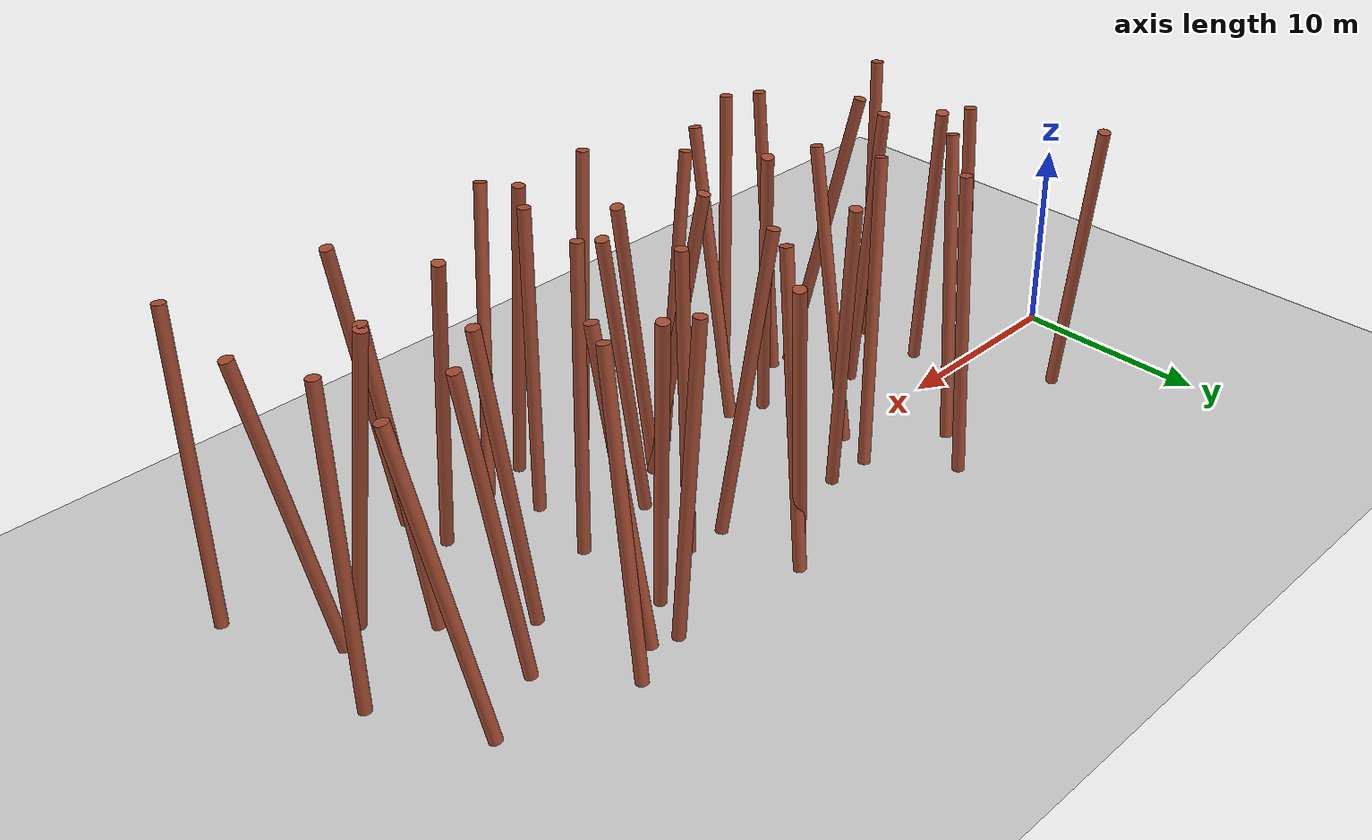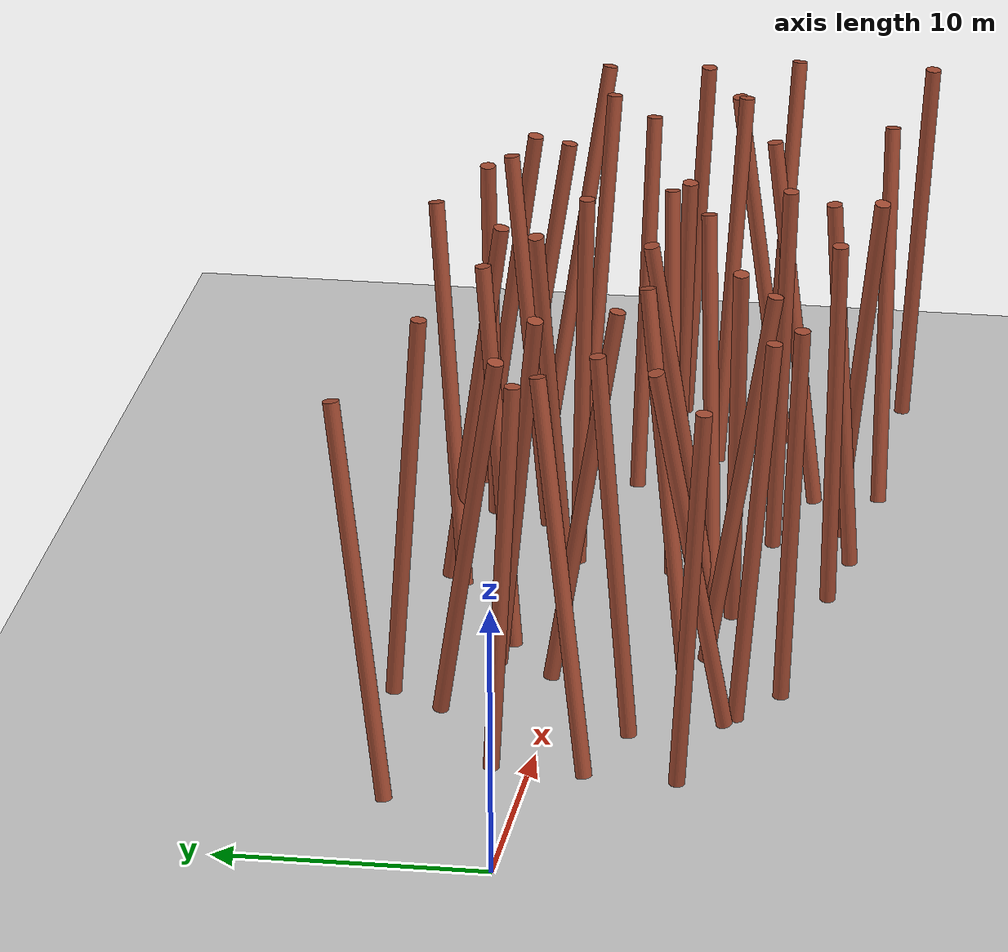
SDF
<sdf version="1.5">
 <world name="default">
  <include><uri>model://sun</uri></include>
  <include><uri>model://ground_plane</uri></include>
  <include><uri>model://asphalt_plane</uri><pose>0 0 -0.000001 0 0 0</pose></include>
  <model name="unit_cylinder_8">
   <pose>7.14832 -6.00009 7.70000 0.07278 -0.09393 0.00000</pose>
   <gravity>0 0 0</gravity>
   <link name="link">
    <inertial>
     <mass>100</mass>
     <inertia><ixx>20</ixx><ixy>0</ixy><ixz>0</ixz><iyy>20</iyy><iyz>0</iyz><izz>20</izz></inertia>
    </inertial>
    <collision name="collision">
     <geometry><cylinder><radius>0.300</radius><length>15.000</length></cylinder></geometry>
    </collision>
    <visual name="visual">
     <geometry><cylinder><radius>0.300</radius><length>15.000</length></cylinder></geometry>
     <material>
      <script><name>Gazebo/Bricks</name><uri>file://media/materials/scripts/gazebo.material</uri></script>
     </material>
    </visual>
   </link>
   <static>1</static>
  </model>
  <model name="unit_cylinder_9">
   <pose>8.47925 -1.17007 7.70000 -0.12433 0.08688 0.00000</pose>
   <gravity>0 0 0</gravity>
   <link name="link">
    <inertial>
     <mass>100</mass>
     <inertia><ixx>20</ixx><ixy>0</ixy><ixz>0</ixz><iyy>20</iyy><iyz>0</iyz><izz>20</izz></inertia>
    </inertial>
    <collision name="collision">
     <geometry><cylinder><radius>0.300</radius><length>15.000</length></cylinder></geometry>
    </collision>
    <visual name="visual">
     <geometry><cylinder><radius>0.300</radius><length>15.000</length></cylinder></geometry>
     <material>
      <script><name>Gazebo/Bricks</name><uri>file://media/materials/scripts/gazebo.material</uri></script>
     </material>
    </visual>
   </link>
   <static>1</static>
  </model>
  <model name="unit_cylinder_10">
   <pose>8.07390 0.90257 7.70000 0.05890 -0.02465 0.00000</pose>
   <gravity>0 0 0</gravity>
   <link name="link">
    <inertial>
     <mass>100</mass>
     <inertia><ixx>20</ixx><ixy>0</ixy><ixz>0</ixz><iyy>20</iyy><iyz>0</iyz><izz>20</izz></inertia>
    </inertial>
    <collision name="collision">
     <geometry><cylinder><radius>0.300</radius><length>15.000</length></cylinder></geometry>
    </collision>
    <visual name="visual">
     <geometry><cylinder><radius>0.300</radius><length>15.000</length></cylinder></geometry>
     <material>
      <script><name>Gazebo/Bricks</name><uri>file://media/materials/scripts/gazebo.material</uri></script>
     </material>
    </visual>
   </link>
   <static>1</static>
  </model>
  <model name="unit_cylinder_11">
   <pose>5.30931 5.61943 7.70000 -0.12679 0.05714 0.00000</pose>
   <gravity>0 0 0</gravity>
   <link name="link">
    <inertial>
     <mass>100</mass>
     <inertia><ixx>20</ixx><ixy>0</ixy><ixz>0</ixz><iyy>20</iyy><iyz>0</iyz><izz>20</izz></inertia>
    </inertial>
    <collision name="collision">
     <geometry><cylinder><radius>0.300</radius><length>15.000</length></cylinder></geometry>
    </collision>
    <visual name="visual">
     <geometry><cylinder><radius>0.300</radius><length>15.000</length></cylinder></geometry>
     <material>
      <script><name>Gazebo/Bricks</name><uri>file://media/materials/scripts/gazebo.material</uri></script>
     </material>
    </visual>
   </link>
   <static>1</static>
  </model>
  <model name="unit_cylinder_28">
   <pose>11.63084 -5.40931 7.70000 -0.14817 -0.17126 0.00000</pose>
   <gravity>0 0 0</gravity>
   <link name="link">
    <inertial>
     <mass>100</mass>
     <inertia><ixx>20</ixx><ixy>0</ixy><ixz>0</ixz><iyy>20</iyy><iyz>0</iyz><izz>20</izz></inertia>
    </inertial>
    <collision name="collision">
     <geometry><cylinder><radius>0.300</radius><length>15.000</length></cylinder></geometry>
    </collision>
    <visual name="visual">
     <geometry><cylinder><radius>0.300</radius><length>15.000</length></cylinder></geometry>
     <material>
      <script><name>Gazebo/Bricks</name><uri>file://media/materials/scripts/gazebo.material</uri></script>
     </material>
    </visual>
    <kinematic>1</kinematic>
   </link>
   <static>0</static>
   <plugin name="dynamic_obstacle_motion_28" filename="libobstaclePathPlugin.so">
    <motion_type>proximity_linear</motion_type>
    <direction>0.120241730 -0.992744643 0.000000000</direction>
    <velocity>0.336076982</velocity>
    <activation_distance>20.000000000</activation_distance>
    <activation_model>iris</activation_model>
    <orientation>false</orientation>
    <marker_enabled>true</marker_enabled>
    <marker_id>28</marker_id>
    <marker_radius>0.300000000</marker_radius>
    <marker_height>15.000000000</marker_height>
    <marker_rate>20.0</marker_rate>
    <marker_topic>/uav_simulator/dynamic_obstacles</marker_topic>
    <marker_frame>map</marker_frame>
   </plugin>
  </model>
  <model name="unit_cylinder_29">
   <pose>11.51156 -2.61874 7.70000 -0.07234 -0.03465 0.00000</pose>
   <gravity>0 0 0</gravity>
   <link name="link">
    <inertial>
     <mass>100</mass>
     <inertia><ixx>20</ixx><ixy>0</ixy><ixz>0</ixz><iyy>20</iyy><iyz>0</iyz><izz>20</izz></inertia>
    </inertial>
    <collision name="collision">
     <geometry><cylinder><radius>0.300</radius><length>15.000</length></cylinder></geometry>
    </collision>
    <visual name="visual">
     <geometry><cylinder><radius>0.300</radius><length>15.000</length></cylinder></geometry>
     <material>
      <script><name>Gazebo/Bricks</name><uri>file://media/materials/scripts/gazebo.material</uri></script>
     </material>
    </visual>
    <kinematic>1</kinematic>
   </link>
   <static>0</static>
   <plugin name="dynamic_obstacle_motion_29" filename="libobstaclePathPlugin.so">
    <motion_type>proximity_linear</motion_type>
    <direction>0.851806445 0.523856641 0.000000000</direction>
    <velocity>1.157463116</velocity>
    <activation_distance>20.000000000</activation_distance>
    <activation_model>iris</activation_model>
    <orientation>false</orientation>
    <marker_enabled>true</marker_enabled>
    <marker_id>29</marker_id>
    <marker_radius>0.300000000</marker_radius>
    <marker_height>15.000000000</marker_height>
    <marker_rate>20.0</marker_rate>
    <marker_topic>/uav_simulator/dynamic_obstacles</marker_topic>
    <marker_frame>map</marker_frame>
   </plugin>
  </model>
  <model name="unit_cylinder_30">
   <pose>11.64072 2.71699 7.70000 0.16422 -0.14961 0.00000</pose>
   <gravity>0 0 0</gravity>
   <link name="link">
    <inertial>
     <mass>100</mass>
     <inertia><ixx>20</ixx><ixy>0</ixy><ixz>0</ixz><iyy>20</iyy><iyz>0</iyz><izz>20</izz></inertia>
    </inertial>
    <collision name="collision">
     <geometry><cylinder><radius>0.300</radius><length>15.000</length></cylinder></geometry>
    </collision>
    <visual name="visual">
     <geometry><cylinder><radius>0.300</radius><length>15.000</length></cylinder></geometry>
     <material>
      <script><name>Gazebo/Bricks</name><uri>file://media/materials/scripts/gazebo.material</uri></script>
     </material>
    </visual>
    <kinematic>1</kinematic>
   </link>
   <static>0</static>
   <plugin name="dynamic_obstacle_motion_30" filename="libobstaclePathPlugin.so">
    <motion_type>proximity_linear</motion_type>
    <direction>-0.948923586 0.315505988 0.000000000</direction>
    <velocity>0.562098630</velocity>
    <activation_distance>20.000000000</activation_distance>
    <activation_model>iris</activation_model>
    <orientation>false</orientation>
    <marker_enabled>true</marker_enabled>
    <marker_id>30</marker_id>
    <marker_radius>0.300000000</marker_radius>
    <marker_height>15.000000000</marker_height>
    <marker_rate>20.0</marker_rate>
    <marker_topic>/uav_simulator/dynamic_obstacles</marker_topic>
    <marker_frame>map</marker_frame>
   </plugin>
  </model>
  <model name="unit_cylinder_47">
   <pose>15.41884 -8.59345 7.70000 0.05243 -0.07882 0.00000</pose>
   <gravity>0 0 0</gravity>
   <link name="link">
    <inertial>
     <mass>100</mass>
     <inertia><ixx>20</ixx><ixy>0</ixy><ixz>0</ixz><iyy>20</iyy><iyz>0</iyz><izz>20</izz></inertia>
    </inertial>
    <collision name="collision">
     <geometry><cylinder><radius>0.300</radius><length>15.000</length></cylinder></geometry>
    </collision>
    <visual name="visual">
     <geometry><cylinder><radius>0.300</radius><length>15.000</length></cylinder></geometry>
     <material>
      <script><name>Gazebo/Bricks</name><uri>file://media/materials/scripts/gazebo.material</uri></script>
     </material>
    </visual>
   </link>
   <static>1</static>
  </model>
  <model name="unit_cylinder_48">
   <pose>13.58565 -7.47808 7.70000 0.08934 -0.02254 0.00000</pose>
   <gravity>0 0 0</gravity>
   <link name="link">
    <inertial>
     <mass>100</mass>
     <inertia><ixx>20</ixx><ixy>0</ixy><ixz>0</ixz><iyy>20</iyy><iyz>0</iyz><izz>20</izz></inertia>
    </inertial>
    <collision name="collision">
     <geometry><cylinder><radius>0.300</radius><length>15.000</length></cylinder></geometry>
    </collision>
    <visual name="visual">
     <geometry><cylinder><radius>0.300</radius><length>15.000</length></cylinder></geometry>
     <material>
      <script><name>Gazebo/Bricks</name><uri>file://media/materials/scripts/gazebo.material</uri></script>
     </material>
    </visual>
   </link>
   <static>1</static>
  </model>
  <model name="unit_cylinder_49">
   <pose>16.13099 -0.86104 7.70000 0.16852 -0.02488 0.00000</pose>
   <gravity>0 0 0</gravity>
   <link name="link">
    <inertial>
     <mass>100</mass>
     <inertia><ixx>20</ixx><ixy>0</ixy><ixz>0</ixz><iyy>20</iyy><iyz>0</iyz><izz>20</izz></inertia>
    </inertial>
    <collision name="collision">
     <geometry><cylinder><radius>0.300</radius><length>15.000</length></cylinder></geometry>
    </collision>
    <visual name="visual">
     <geometry><cylinder><radius>0.300</radius><length>15.000</length></cylinder></geometry>
     <material>
      <script><name>Gazebo/Bricks</name><uri>file://media/materials/scripts/gazebo.material</uri></script>
     </material>
    </visual>
    <kinematic>1</kinematic>
   </link>
   <static>0</static>
   <plugin name="dynamic_obstacle_motion_49" filename="libobstaclePathPlugin.so">
    <motion_type>proximity_linear</motion_type>
    <direction>0.685323812 0.728238472 0.000000000</direction>
    <velocity>0.678019189</velocity>
    <activation_distance>20.000000000</activation_distance>
    <activation_model>iris</activation_model>
    <orientation>false</orientation>
    <marker_enabled>true</marker_enabled>
    <marker_id>49</marker_id>
    <marker_radius>0.300000000</marker_radius>
    <marker_height>15.000000000</marker_height>
    <marker_rate>20.0</marker_rate>
    <marker_topic>/uav_simulator/dynamic_obstacles</marker_topic>
    <marker_frame>map</marker_frame>
   </plugin>
  </model>
  <model name="unit_cylinder_50">
   <pose>15.97613 1.59817 7.70000 0.11770 -0.16946 0.00000</pose>
   <gravity>0 0 0</gravity>
   <link name="link">
    <inertial>
     <mass>100</mass>
     <inertia><ixx>20</ixx><ixy>0</ixy><ixz>0</ixz><iyy>20</iyy><iyz>0</iyz><izz>20</izz></inertia>
    </inertial>
    <collision name="collision">
     <geometry><cylinder><radius>0.300</radius><length>15.000</length></cylinder></geometry>
    </collision>
    <visual name="visual">
     <geometry><cylinder><radius>0.300</radius><length>15.000</length></cylinder></geometry>
     <material>
      <script><name>Gazebo/Bricks</name><uri>file://media/materials/scripts/gazebo.material</uri></script>
     </material>
    </visual>
    <kinematic>1</kinematic>
   </link>
   <static>0</static>
   <plugin name="dynamic_obstacle_motion_50" filename="libobstaclePathPlugin.so">
    <motion_type>proximity_linear</motion_type>
    <direction>0.761717506 -0.647909284 0.000000000</direction>
    <velocity>0.835055037</velocity>
    <activation_distance>20.000000000</activation_distance>
    <activation_model>iris</activation_model>
    <orientation>false</orientation>
    <marker_enabled>true</marker_enabled>
    <marker_id>50</marker_id>
    <marker_radius>0.300000000</marker_radius>
    <marker_height>15.000000000</marker_height>
    <marker_rate>20.0</marker_rate>
    <marker_topic>/uav_simulator/dynamic_obstacles</marker_topic>
    <marker_frame>map</marker_frame>
   </plugin>
  </model>
  <model name="unit_cylinder_51">
   <pose>14.11386 5.40686 7.70000 0.07617 -0.03544 0.00000</pose>
   <gravity>0 0 0</gravity>
   <link name="link">
    <inertial>
     <mass>100</mass>
     <inertia><ixx>20</ixx><ixy>0</ixy><ixz>0</ixz><iyy>20</iyy><iyz>0</iyz><izz>20</izz></inertia>
    </inertial>
    <collision name="collision">
     <geometry><cylinder><radius>0.300</radius><length>15.000</length></cylinder></geometry>
    </collision>
    <visual name="visual">
     <geometry><cylinder><radius>0.300</radius><length>15.000</length></cylinder></geometry>
     <material>
      <script><name>Gazebo/Bricks</name><uri>file://media/materials/scripts/gazebo.material</uri></script>
     </material>
    </visual>
   </link>
   <static>1</static>
  </model>
  <model name="unit_cylinder_68">
   <pose>18.54137 -6.31638 7.70000 0.17023 -0.02952 0.00000</pose>
   <gravity>0 0 0</gravity>
   <link name="link">
    <inertial>
     <mass>100</mass>
     <inertia><ixx>20</ixx><ixy>0</ixy><ixz>0</ixz><iyy>20</iyy><iyz>0</iyz><izz>20</izz></inertia>
    </inertial>
    <collision name="collision">
     <geometry><cylinder><radius>0.300</radius><length>15.000</length></cylinder></geometry>
    </collision>
    <visual name="visual">
     <geometry><cylinder><radius>0.300</radius><length>15.000</length></cylinder></geometry>
     <material>
      <script><name>Gazebo/Bricks</name><uri>file://media/materials/scripts/gazebo.material</uri></script>
     </material>
    </visual>
    <kinematic>1</kinematic>
   </link>
   <static>0</static>
   <plugin name="dynamic_obstacle_motion_68" filename="libobstaclePathPlugin.so">
    <motion_type>proximity_linear</motion_type>
    <direction>-0.977444820 -0.211190966 -0.000000000</direction>
    <velocity>0.997586854</velocity>
    <activation_distance>20.000000000</activation_distance>
    <activation_model>iris</activation_model>
    <orientation>false</orientation>
    <marker_enabled>true</marker_enabled>
    <marker_id>68</marker_id>
    <marker_radius>0.300000000</marker_radius>
    <marker_height>15.000000000</marker_height>
    <marker_rate>20.0</marker_rate>
    <marker_topic>/uav_simulator/dynamic_obstacles</marker_topic>
    <marker_frame>map</marker_frame>
   </plugin>
  </model>
  <model name="unit_cylinder_69">
   <pose>17.65868 -3.69898 7.70000 -0.11077 0.09846 0.00000</pose>
   <gravity>0 0 0</gravity>
   <link name="link">
    <inertial>
     <mass>100</mass>
     <inertia><ixx>20</ixx><ixy>0</ixy><ixz>0</ixz><iyy>20</iyy><iyz>0</iyz><izz>20</izz></inertia>
    </inertial>
    <collision name="collision">
     <geometry><cylinder><radius>0.300</radius><length>15.000</length></cylinder></geometry>
    </collision>
    <visual name="visual">
     <geometry><cylinder><radius>0.300</radius><length>15.000</length></cylinder></geometry>
     <material>
      <script><name>Gazebo/Bricks</name><uri>file://media/materials/scripts/gazebo.material</uri></script>
     </material>
    </visual>
   </link>
   <static>1</static>
  </model>
  <model name="unit_cylinder_70">
   <pose>19.43897 2.83089 7.70000 -0.07969 0.02295 0.00000</pose>
   <gravity>0 0 0</gravity>
   <link name="link">
    <inertial>
     <mass>100</mass>
     <inertia><ixx>20</ixx><ixy>0</ixy><ixz>0</ixz><iyy>20</iyy><iyz>0</iyz><izz>20</izz></inertia>
    </inertial>
    <collision name="collision">
     <geometry><cylinder><radius>0.300</radius><length>15.000</length></cylinder></geometry>
    </collision>
    <visual name="visual">
     <geometry><cylinder><radius>0.300</radius><length>15.000</length></cylinder></geometry>
     <material>
      <script><name>Gazebo/Bricks</name><uri>file://media/materials/scripts/gazebo.material</uri></script>
     </material>
    </visual>
    <kinematic>1</kinematic>
   </link>
   <static>0</static>
   <plugin name="dynamic_obstacle_motion_70" filename="libobstaclePathPlugin.so">
    <motion_type>proximity_linear</motion_type>
    <direction>0.257898059 0.966172133 0.000000000</direction>
    <velocity>0.356231897</velocity>
    <activation_distance>20.000000000</activation_distance>
    <activation_model>iris</activation_model>
    <orientation>false</orientation>
    <marker_enabled>true</marker_enabled>
    <marker_id>70</marker_id>
    <marker_radius>0.300000000</marker_radius>
    <marker_height>15.000000000</marker_height>
    <marker_rate>20.0</marker_rate>
    <marker_topic>/uav_simulator/dynamic_obstacles</marker_topic>
    <marker_frame>map</marker_frame>
   </plugin>
  </model>
  <model name="unit_cylinder_87">
   <pose>24.46900 -9.08998 7.70000 0.03224 -0.10227 0.00000</pose>
   <gravity>0 0 0</gravity>
   <link name="link">
    <inertial>
     <mass>100</mass>
     <inertia><ixx>20</ixx><ixy>0</ixy><ixz>0</ixz><iyy>20</iyy><iyz>0</iyz><izz>20</izz></inertia>
    </inertial>
    <collision name="collision">
     <geometry><cylinder><radius>0.300</radius><length>15.000</length></cylinder></geometry>
    </collision>
    <visual name="visual">
     <geometry><cylinder><radius>0.300</radius><length>15.000</length></cylinder></geometry>
     <material>
      <script><name>Gazebo/Bricks</name><uri>file://media/materials/scripts/gazebo.material</uri></script>
     </material>
    </visual>
   </link>
   <static>1</static>
  </model>
  <model name="unit_cylinder_88">
   <pose>21.69077 -5.75967 7.70000 0.03844 -0.16963 0.00000</pose>
   <gravity>0 0 0</gravity>
   <link name="link">
    <inertial>
     <mass>100</mass>
     <inertia><ixx>20</ixx><ixy>0</ixy><ixz>0</ixz><iyy>20</iyy><iyz>0</iyz><izz>20</izz></inertia>
    </inertial>
    <collision name="collision">
     <geometry><cylinder><radius>0.300</radius><length>15.000</length></cylinder></geometry>
    </collision>
    <visual name="visual">
     <geometry><cylinder><radius>0.300</radius><length>15.000</length></cylinder></geometry>
     <material>
      <script><name>Gazebo/Bricks</name><uri>file://media/materials/scripts/gazebo.material</uri></script>
     </material>
    </visual>
    <kinematic>1</kinematic>
   </link>
   <static>0</static>
   <plugin name="dynamic_obstacle_motion_88" filename="libobstaclePathPlugin.so">
    <motion_type>proximity_linear</motion_type>
    <direction>-0.371888170 0.928277539 0.000000000</direction>
    <velocity>0.172719032</velocity>
    <activation_distance>20.000000000</activation_distance>
    <activation_model>iris</activation_model>
    <orientation>false</orientation>
    <marker_enabled>true</marker_enabled>
    <marker_id>88</marker_id>
    <marker_radius>0.300000000</marker_radius>
    <marker_height>15.000000000</marker_height>
    <marker_rate>20.0</marker_rate>
    <marker_topic>/uav_simulator/dynamic_obstacles</marker_topic>
    <marker_frame>map</marker_frame>
   </plugin>
  </model>
  <model name="unit_cylinder_89">
   <pose>23.77865 -3.38093 7.70000 -0.13553 -0.11826 0.00000</pose>
   <gravity>0 0 0</gravity>
   <link name="link">
    <inertial>
     <mass>100</mass>
     <inertia><ixx>20</ixx><ixy>0</ixy><ixz>0</ixz><iyy>20</iyy><iyz>0</iyz><izz>20</izz></inertia>
    </inertial>
    <collision name="collision">
     <geometry><cylinder><radius>0.300</radius><length>15.000</length></cylinder></geometry>
    </collision>
    <visual name="visual">
     <geometry><cylinder><radius>0.300</radius><length>15.000</length></cylinder></geometry>
     <material>
      <script><name>Gazebo/Bricks</name><uri>file://media/materials/scripts/gazebo.material</uri></script>
     </material>
    </visual>
    <kinematic>1</kinematic>
   </link>
   <static>0</static>
   <plugin name="dynamic_obstacle_motion_89" filename="libobstaclePathPlugin.so">
    <motion_type>proximity_linear</motion_type>
    <direction>-0.206933344 -0.978355044 0.000000000</direction>
    <velocity>0.623569119</velocity>
    <activation_distance>20.000000000</activation_distance>
    <activation_model>iris</activation_model>
    <orientation>false</orientation>
    <marker_enabled>true</marker_enabled>
    <marker_id>89</marker_id>
    <marker_radius>0.300000000</marker_radius>
    <marker_height>15.000000000</marker_height>
    <marker_rate>20.0</marker_rate>
    <marker_topic>/uav_simulator/dynamic_obstacles</marker_topic>
    <marker_frame>map</marker_frame>
   </plugin>
  </model>
  <model name="unit_cylinder_90">
   <pose>24.45324 1.63069 7.70000 -0.05108 -0.17038 0.00000</pose>
   <gravity>0 0 0</gravity>
   <link name="link">
    <inertial>
     <mass>100</mass>
     <inertia><ixx>20</ixx><ixy>0</ixy><ixz>0</ixz><iyy>20</iyy><iyz>0</iyz><izz>20</izz></inertia>
    </inertial>
    <collision name="collision">
     <geometry><cylinder><radius>0.300</radius><length>15.000</length></cylinder></geometry>
    </collision>
    <visual name="visual">
     <geometry><cylinder><radius>0.300</radius><length>15.000</length></cylinder></geometry>
     <material>
      <script><name>Gazebo/Bricks</name><uri>file://media/materials/scripts/gazebo.material</uri></script>
     </material>
    </visual>
   </link>
   <static>1</static>
  </model>
  <model name="unit_cylinder_91">
   <pose>24.59095 4.55072 7.70000 0.15007 -0.09093 0.00000</pose>
   <gravity>0 0 0</gravity>
   <link name="link">
    <inertial>
     <mass>100</mass>
     <inertia><ixx>20</ixx><ixy>0</ixy><ixz>0</ixz><iyy>20</iyy><iyz>0</iyz><izz>20</izz></inertia>
    </inertial>
    <collision name="collision">
     <geometry><cylinder><radius>0.300</radius><length>15.000</length></cylinder></geometry>
    </collision>
    <visual name="visual">
     <geometry><cylinder><radius>0.300</radius><length>15.000</length></cylinder></geometry>
     <material>
      <script><name>Gazebo/Bricks</name><uri>file://media/materials/scripts/gazebo.material</uri></script>
     </material>
    </visual>
   </link>
   <static>1</static>
  </model>
  <model name="unit_cylinder_107">
   <pose>28.46546 -8.93497 7.70000 -0.04503 -0.05784 0.00000</pose>
   <gravity>0 0 0</gravity>
   <link name="link">
    <inertial>
     <mass>100</mass>
     <inertia><ixx>20</ixx><ixy>0</ixy><ixz>0</ixz><iyy>20</iyy><iyz>0</iyz><izz>20</izz></inertia>
    </inertial>
    <collision name="collision">
     <geometry><cylinder><radius>0.300</radius><length>15.000</length></cylinder></geometry>
    </collision>
    <visual name="visual">
     <geometry><cylinder><radius>0.300</radius><length>15.000</length></cylinder></geometry>
     <material>
      <script><name>Gazebo/Bricks</name><uri>file://media/materials/scripts/gazebo.material</uri></script>
     </material>
    </visual>
   </link>
   <static>1</static>
  </model>
  <model name="unit_cylinder_108">
   <pose>25.43774 -4.31017 7.70000 -0.03296 0.12887 0.00000</pose>
   <gravity>0 0 0</gravity>
   <link name="link">
    <inertial>
     <mass>100</mass>
     <inertia><ixx>20</ixx><ixy>0</ixy><ixz>0</ixz><iyy>20</iyy><iyz>0</iyz><izz>20</izz></inertia>
    </inertial>
    <collision name="collision">
     <geometry><cylinder><radius>0.300</radius><length>15.000</length></cylinder></geometry>
    </collision>
    <visual name="visual">
     <geometry><cylinder><radius>0.300</radius><length>15.000</length></cylinder></geometry>
     <material>
      <script><name>Gazebo/Bricks</name><uri>file://media/materials/scripts/gazebo.material</uri></script>
     </material>
    </visual>
    <kinematic>1</kinematic>
   </link>
   <static>0</static>
   <plugin name="dynamic_obstacle_motion_108" filename="libobstaclePathPlugin.so">
    <motion_type>proximity_linear</motion_type>
    <direction>-0.605970874 -0.795486832 0.000000000</direction>
    <velocity>0.945606733</velocity>
    <activation_distance>20.000000000</activation_distance>
    <activation_model>iris</activation_model>
    <orientation>false</orientation>
    <marker_enabled>true</marker_enabled>
    <marker_id>108</marker_id>
    <marker_radius>0.300000000</marker_radius>
    <marker_height>15.000000000</marker_height>
    <marker_rate>20.0</marker_rate>
    <marker_topic>/uav_simulator/dynamic_obstacles</marker_topic>
    <marker_frame>map</marker_frame>
   </plugin>
  </model>
  <model name="unit_cylinder_109">
   <pose>27.78882 -2.50811 7.70000 -0.02154 0.13372 0.00000</pose>
   <gravity>0 0 0</gravity>
   <link name="link">
    <inertial>
     <mass>100</mass>
     <inertia><ixx>20</ixx><ixy>0</ixy><ixz>0</ixz><iyy>20</iyy><iyz>0</iyz><izz>20</izz></inertia>
    </inertial>
    <collision name="collision">
     <geometry><cylinder><radius>0.300</radius><length>15.000</length></cylinder></geometry>
    </collision>
    <visual name="visual">
     <geometry><cylinder><radius>0.300</radius><length>15.000</length></cylinder></geometry>
     <material>
      <script><name>Gazebo/Bricks</name><uri>file://media/materials/scripts/gazebo.material</uri></script>
     </material>
    </visual>
   </link>
   <static>1</static>
  </model>
  <model name="unit_cylinder_110">
   <pose>27.38887 0.88147 7.70000 0.02637 -0.02631 0.00000</pose>
   <gravity>0 0 0</gravity>
   <link name="link">
    <inertial>
     <mass>100</mass>
     <inertia><ixx>20</ixx><ixy>0</ixy><ixz>0</ixz><iyy>20</iyy><iyz>0</iyz><izz>20</izz></inertia>
    </inertial>
    <collision name="collision">
     <geometry><cylinder><radius>0.300</radius><length>15.000</length></cylinder></geometry>
    </collision>
    <visual name="visual">
     <geometry><cylinder><radius>0.300</radius><length>15.000</length></cylinder></geometry>
     <material>
      <script><name>Gazebo/Bricks</name><uri>file://media/materials/scripts/gazebo.material</uri></script>
     </material>
    </visual>
    <kinematic>1</kinematic>
   </link>
   <static>0</static>
   <plugin name="dynamic_obstacle_motion_110" filename="libobstaclePathPlugin.so">
    <motion_type>proximity_linear</motion_type>
    <direction>-0.642582593 -0.766216426 0.000000000</direction>
    <velocity>1.695090708</velocity>
    <activation_distance>20.000000000</activation_distance>
    <activation_model>iris</activation_model>
    <orientation>false</orientation>
    <marker_enabled>true</marker_enabled>
    <marker_id>110</marker_id>
    <marker_radius>0.300000000</marker_radius>
    <marker_height>15.000000000</marker_height>
    <marker_rate>20.0</marker_rate>
    <marker_topic>/uav_simulator/dynamic_obstacles</marker_topic>
    <marker_frame>map</marker_frame>
   </plugin>
  </model>
  <model name="unit_cylinder_111">
   <pose>25.39644 5.63169 7.70000 -0.08646 0.11296 0.00000</pose>
   <gravity>0 0 0</gravity>
   <link name="link">
    <inertial>
     <mass>100</mass>
     <inertia><ixx>20</ixx><ixy>0</ixy><ixz>0</ixz><iyy>20</iyy><iyz>0</iyz><izz>20</izz></inertia>
    </inertial>
    <collision name="collision">
     <geometry><cylinder><radius>0.300</radius><length>15.000</length></cylinder></geometry>
    </collision>
    <visual name="visual">
     <geometry><cylinder><radius>0.300</radius><length>15.000</length></cylinder></geometry>
     <material>
      <script><name>Gazebo/Bricks</name><uri>file://media/materials/scripts/gazebo.material</uri></script>
     </material>
    </visual>
   </link>
   <static>1</static>
  </model>
  <model name="unit_cylinder_127">
   <pose>30.06796 -9.40568 7.70000 0.12447 -0.17447 0.00000</pose>
   <gravity>0 0 0</gravity>
   <link name="link">
    <inertial>
     <mass>100</mass>
     <inertia><ixx>20</ixx><ixy>0</ixy><ixz>0</ixz><iyy>20</iyy><iyz>0</iyz><izz>20</izz></inertia>
    </inertial>
    <collision name="collision">
     <geometry><cylinder><radius>0.300</radius><length>15.000</length></cylinder></geometry>
    </collision>
    <visual name="visual">
     <geometry><cylinder><radius>0.300</radius><length>15.000</length></cylinder></geometry>
     <material>
      <script><name>Gazebo/Bricks</name><uri>file://media/materials/scripts/gazebo.material</uri></script>
     </material>
    </visual>
    <kinematic>1</kinematic>
   </link>
   <static>0</static>
   <plugin name="dynamic_obstacle_motion_127" filename="libobstaclePathPlugin.so">
    <motion_type>proximity_linear</motion_type>
    <direction>-0.994704436 -0.102776870 0.000000000</direction>
    <velocity>0.319391613</velocity>
    <activation_distance>20.000000000</activation_distance>
    <activation_model>iris</activation_model>
    <orientation>false</orientation>
    <marker_enabled>true</marker_enabled>
    <marker_id>127</marker_id>
    <marker_radius>0.300000000</marker_radius>
    <marker_height>15.000000000</marker_height>
    <marker_rate>20.0</marker_rate>
    <marker_topic>/uav_simulator/dynamic_obstacles</marker_topic>
    <marker_frame>map</marker_frame>
   </plugin>
  </model>
  <model name="unit_cylinder_128">
   <pose>29.72349 -6.46641 7.70000 0.04612 -0.06946 0.00000</pose>
   <gravity>0 0 0</gravity>
   <link name="link">
    <inertial>
     <mass>100</mass>
     <inertia><ixx>20</ixx><ixy>0</ixy><ixz>0</ixz><iyy>20</iyy><iyz>0</iyz><izz>20</izz></inertia>
    </inertial>
    <collision name="collision">
     <geometry><cylinder><radius>0.300</radius><length>15.000</length></cylinder></geometry>
    </collision>
    <visual name="visual">
     <geometry><cylinder><radius>0.300</radius><length>15.000</length></cylinder></geometry>
     <material>
      <script><name>Gazebo/Bricks</name><uri>file://media/materials/scripts/gazebo.material</uri></script>
     </material>
    </visual>
    <kinematic>1</kinematic>
   </link>
   <static>0</static>
   <plugin name="dynamic_obstacle_motion_128" filename="libobstaclePathPlugin.so">
    <motion_type>proximity_linear</motion_type>
    <direction>-0.268788942 -0.963199099 0.000000000</direction>
    <velocity>0.438540580</velocity>
    <activation_distance>20.000000000</activation_distance>
    <activation_model>iris</activation_model>
    <orientation>false</orientation>
    <marker_enabled>true</marker_enabled>
    <marker_id>128</marker_id>
    <marker_radius>0.300000000</marker_radius>
    <marker_height>15.000000000</marker_height>
    <marker_rate>20.0</marker_rate>
    <marker_topic>/uav_simulator/dynamic_obstacles</marker_topic>
    <marker_frame>map</marker_frame>
   </plugin>
  </model>
  <model name="unit_cylinder_129">
   <pose>30.28032 -2.57835 7.70000 0.04490 -0.08679 0.00000</pose>
   <gravity>0 0 0</gravity>
   <link name="link">
    <inertial>
     <mass>100</mass>
     <inertia><ixx>20</ixx><ixy>0</ixy><ixz>0</ixz><iyy>20</iyy><iyz>0</iyz><izz>20</izz></inertia>
    </inertial>
    <collision name="collision">
     <geometry><cylinder><radius>0.300</radius><length>15.000</length></cylinder></geometry>
    </collision>
    <visual name="visual">
     <geometry><cylinder><radius>0.300</radius><length>15.000</length></cylinder></geometry>
     <material>
      <script><name>Gazebo/Bricks</name><uri>file://media/materials/scripts/gazebo.material</uri></script>
     </material>
    </visual>
   </link>
   <static>1</static>
  </model>
  <model name="unit_cylinder_130">
   <pose>31.29282 3.50850 7.70000 -0.10131 0.04404 0.00000</pose>
   <gravity>0 0 0</gravity>
   <link name="link">
    <inertial>
     <mass>100</mass>
     <inertia><ixx>20</ixx><ixy>0</ixy><ixz>0</ixz><iyy>20</iyy><iyz>0</iyz><izz>20</izz></inertia>
    </inertial>
    <collision name="collision">
     <geometry><cylinder><radius>0.300</radius><length>15.000</length></cylinder></geometry>
    </collision>
    <visual name="visual">
     <geometry><cylinder><radius>0.300</radius><length>15.000</length></cylinder></geometry>
     <material>
      <script><name>Gazebo/Bricks</name><uri>file://media/materials/scripts/gazebo.material</uri></script>
     </material>
    </visual>
    <kinematic>1</kinematic>
   </link>
   <static>0</static>
   <plugin name="dynamic_obstacle_motion_130" filename="libobstaclePathPlugin.so">
    <motion_type>proximity_linear</motion_type>
    <direction>0.437982207 0.898983641 0.000000000</direction>
    <velocity>1.827275725</velocity>
    <activation_distance>20.000000000</activation_distance>
    <activation_model>iris</activation_model>
    <orientation>false</orientation>
    <marker_enabled>true</marker_enabled>
    <marker_id>130</marker_id>
    <marker_radius>0.300000000</marker_radius>
    <marker_height>15.000000000</marker_height>
    <marker_rate>20.0</marker_rate>
    <marker_topic>/uav_simulator/dynamic_obstacles</marker_topic>
    <marker_frame>map</marker_frame>
   </plugin>
  </model>
  <model name="unit_cylinder_131">
   <pose>31.18391 4.97761 7.70000 -0.00107 -0.10916 0.00000</pose>
   <gravity>0 0 0</gravity>
   <link name="link">
    <inertial>
     <mass>100</mass>
     <inertia><ixx>20</ixx><ixy>0</ixy><ixz>0</ixz><iyy>20</iyy><iyz>0</iyz><izz>20</izz></inertia>
    </inertial>
    <collision name="collision">
     <geometry><cylinder><radius>0.300</radius><length>15.000</length></cylinder></geometry>
    </collision>
    <visual name="visual">
     <geometry><cylinder><radius>0.300</radius><length>15.000</length></cylinder></geometry>
     <material>
      <script><name>Gazebo/Bricks</name><uri>file://media/materials/scripts/gazebo.material</uri></script>
     </material>
    </visual>
    <kinematic>1</kinematic>
   </link>
   <static>0</static>
   <plugin name="dynamic_obstacle_motion_131" filename="libobstaclePathPlugin.so">
    <motion_type>proximity_linear</motion_type>
    <direction>0.997932904 0.064264448 0.000000000</direction>
    <velocity>0.935098827</velocity>
    <activation_distance>20.000000000</activation_distance>
    <activation_model>iris</activation_model>
    <orientation>false</orientation>
    <marker_enabled>true</marker_enabled>
    <marker_id>131</marker_id>
    <marker_radius>0.300000000</marker_radius>
    <marker_height>15.000000000</marker_height>
    <marker_rate>20.0</marker_rate>
    <marker_topic>/uav_simulator/dynamic_obstacles</marker_topic>
    <marker_frame>map</marker_frame>
   </plugin>
  </model>
  <model name="unit_cylinder_147">
   <pose>36.09720 -9.74711 7.70000 0.00973 0.12333 0.00000</pose>
   <gravity>0 0 0</gravity>
   <link name="link">
    <inertial>
     <mass>100</mass>
     <inertia><ixx>20</ixx><ixy>0</ixy><ixz>0</ixz><iyy>20</iyy><iyz>0</iyz><izz>20</izz></inertia>
    </inertial>
    <collision name="collision">
     <geometry><cylinder><radius>0.300</radius><length>15.000</length></cylinder></geometry>
    </collision>
    <visual name="visual">
     <geometry><cylinder><radius>0.300</radius><length>15.000</length></cylinder></geometry>
     <material>
      <script><name>Gazebo/Bricks</name><uri>file://media/materials/scripts/gazebo.material</uri></script>
     </material>
    </visual>
   </link>
   <static>1</static>
  </model>
  <model name="unit_cylinder_148">
   <pose>34.71231 -6.35976 7.70000 -0.11189 -0.00865 0.00000</pose>
   <gravity>0 0 0</gravity>
   <link name="link">
    <inertial>
     <mass>100</mass>
     <inertia><ixx>20</ixx><ixy>0</ixy><ixz>0</ixz><iyy>20</iyy><iyz>0</iyz><izz>20</izz></inertia>
    </inertial>
    <collision name="collision">
     <geometry><cylinder><radius>0.300</radius><length>15.000</length></cylinder></geometry>
    </collision>
    <visual name="visual">
     <geometry><cylinder><radius>0.300</radius><length>15.000</length></cylinder></geometry>
     <material>
      <script><name>Gazebo/Bricks</name><uri>file://media/materials/scripts/gazebo.material</uri></script>
     </material>
    </visual>
   </link>
   <static>1</static>
  </model>
  <model name="unit_cylinder_149">
   <pose>36.12133 -0.32712 7.70000 0.02880 0.09419 0.00000</pose>
   <gravity>0 0 0</gravity>
   <link name="link">
    <inertial>
     <mass>100</mass>
     <inertia><ixx>20</ixx><ixy>0</ixy><ixz>0</ixz><iyy>20</iyy><iyz>0</iyz><izz>20</izz></inertia>
    </inertial>
    <collision name="collision">
     <geometry><cylinder><radius>0.300</radius><length>15.000</length></cylinder></geometry>
    </collision>
    <visual name="visual">
     <geometry><cylinder><radius>0.300</radius><length>15.000</length></cylinder></geometry>
     <material>
      <script><name>Gazebo/Bricks</name><uri>file://media/materials/scripts/gazebo.material</uri></script>
     </material>
    </visual>
   </link>
   <static>1</static>
  </model>
  <model name="unit_cylinder_150">
   <pose>33.33385 3.44073 7.70000 0.15393 0.01767 0.00000</pose>
   <gravity>0 0 0</gravity>
   <link name="link">
    <inertial>
     <mass>100</mass>
     <inertia><ixx>20</ixx><ixy>0</ixy><ixz>0</ixz><iyy>20</iyy><iyz>0</iyz><izz>20</izz></inertia>
    </inertial>
    <collision name="collision">
     <geometry><cylinder><radius>0.300</radius><length>15.000</length></cylinder></geometry>
    </collision>
    <visual name="visual">
     <geometry><cylinder><radius>0.300</radius><length>15.000</length></cylinder></geometry>
     <material>
      <script><name>Gazebo/Bricks</name><uri>file://media/materials/scripts/gazebo.material</uri></script>
     </material>
    </visual>
   </link>
   <static>1</static>
  </model>
  <model name="unit_cylinder_151">
   <pose>34.54116 4.81683 7.70000 0.14717 -0.05705 0.00000</pose>
   <gravity>0 0 0</gravity>
   <link name="link">
    <inertial>
     <mass>100</mass>
     <inertia><ixx>20</ixx><ixy>0</ixy><ixz>0</ixz><iyy>20</iyy><iyz>0</iyz><izz>20</izz></inertia>
    </inertial>
    <collision name="collision">
     <geometry><cylinder><radius>0.300</radius><length>15.000</length></cylinder></geometry>
    </collision>
    <visual name="visual">
     <geometry><cylinder><radius>0.300</radius><length>15.000</length></cylinder></geometry>
     <material>
      <script><name>Gazebo/Bricks</name><uri>file://media/materials/scripts/gazebo.material</uri></script>
     </material>
    </visual>
    <kinematic>1</kinematic>
   </link>
   <static>0</static>
   <plugin name="dynamic_obstacle_motion_151" filename="libobstaclePathPlugin.so">
    <motion_type>proximity_linear</motion_type>
    <direction>0.191694254 -0.981454692 0.000000000</direction>
    <velocity>0.740245718</velocity>
    <activation_distance>20.000000000</activation_distance>
    <activation_model>iris</activation_model>
    <orientation>false</orientation>
    <marker_enabled>true</marker_enabled>
    <marker_id>151</marker_id>
    <marker_radius>0.300000000</marker_radius>
    <marker_height>15.000000000</marker_height>
    <marker_rate>20.0</marker_rate>
    <marker_topic>/uav_simulator/dynamic_obstacles</marker_topic>
    <marker_frame>map</marker_frame>
   </plugin>
  </model>
  <model name="unit_cylinder_168">
   <pose>40.29644 -4.38319 7.70000 -0.11783 -0.07197 0.00000</pose>
   <gravity>0 0 0</gravity>
   <link name="link">
    <inertial>
     <mass>100</mass>
     <inertia><ixx>20</ixx><ixy>0</ixy><ixz>0</ixz><iyy>20</iyy><iyz>0</iyz><izz>20</izz></inertia>
    </inertial>
    <collision name="collision">
     <geometry><cylinder><radius>0.300</radius><length>15.000</length></cylinder></geometry>
    </collision>
    <visual name="visual">
     <geometry><cylinder><radius>0.300</radius><length>15.000</length></cylinder></geometry>
     <material>
      <script><name>Gazebo/Bricks</name><uri>file://media/materials/scripts/gazebo.material</uri></script>
     </material>
    </visual>
   </link>
   <static>1</static>
  </model>
  <model name="unit_cylinder_169">
   <pose>39.03640 -3.33458 7.70000 0.06303 0.07199 0.00000</pose>
   <gravity>0 0 0</gravity>
   <link name="link">
    <inertial>
     <mass>100</mass>
     <inertia><ixx>20</ixx><ixy>0</ixy><ixz>0</ixz><iyy>20</iyy><iyz>0</iyz><izz>20</izz></inertia>
    </inertial>
    <collision name="collision">
     <geometry><cylinder><radius>0.300</radius><length>15.000</length></cylinder></geometry>
    </collision>
    <visual name="visual">
     <geometry><cylinder><radius>0.300</radius><length>15.000</length></cylinder></geometry>
     <material>
      <script><name>Gazebo/Bricks</name><uri>file://media/materials/scripts/gazebo.material</uri></script>
     </material>
    </visual>
    <kinematic>1</kinematic>
   </link>
   <static>0</static>
   <plugin name="dynamic_obstacle_motion_169" filename="libobstaclePathPlugin.so">
    <motion_type>proximity_linear</motion_type>
    <direction>0.878778174 -0.477230469 0.000000000</direction>
    <velocity>0.830522467</velocity>
    <activation_distance>20.000000000</activation_distance>
    <activation_model>iris</activation_model>
    <orientation>false</orientation>
    <marker_enabled>true</marker_enabled>
    <marker_id>169</marker_id>
    <marker_radius>0.300000000</marker_radius>
    <marker_height>15.000000000</marker_height>
    <marker_rate>20.0</marker_rate>
    <marker_topic>/uav_simulator/dynamic_obstacles</marker_topic>
    <marker_frame>map</marker_frame>
   </plugin>
  </model>
  <model name="unit_cylinder_170">
   <pose>38.47061 1.83710 7.70000 0.06310 0.09342 0.00000</pose>
   <gravity>0 0 0</gravity>
   <link name="link">
    <inertial>
     <mass>100</mass>
     <inertia><ixx>20</ixx><ixy>0</ixy><ixz>0</ixz><iyy>20</iyy><iyz>0</iyz><izz>20</izz></inertia>
    </inertial>
    <collision name="collision">
     <geometry><cylinder><radius>0.300</radius><length>15.000</length></cylinder></geometry>
    </collision>
    <visual name="visual">
     <geometry><cylinder><radius>0.300</radius><length>15.000</length></cylinder></geometry>
     <material>
      <script><name>Gazebo/Bricks</name><uri>file://media/materials/scripts/gazebo.material</uri></script>
     </material>
    </visual>
    <kinematic>1</kinematic>
   </link>
   <static>0</static>
   <plugin name="dynamic_obstacle_motion_170" filename="libobstaclePathPlugin.so">
    <motion_type>proximity_linear</motion_type>
    <direction>-0.972042455 0.234805165 -0.000000000</direction>
    <velocity>1.788657719</velocity>
    <activation_distance>20.000000000</activation_distance>
    <activation_model>iris</activation_model>
    <orientation>false</orientation>
    <marker_enabled>true</marker_enabled>
    <marker_id>170</marker_id>
    <marker_radius>0.300000000</marker_radius>
    <marker_height>15.000000000</marker_height>
    <marker_rate>20.0</marker_rate>
    <marker_topic>/uav_simulator/dynamic_obstacles</marker_topic>
    <marker_frame>map</marker_frame>
   </plugin>
  </model>
  <model name="unit_cylinder_187">
   <pose>44.39487 -10.11294 7.70000 0.07396 -0.05505 0.00000</pose>
   <gravity>0 0 0</gravity>
   <link name="link">
    <inertial>
     <mass>100</mass>
     <inertia><ixx>20</ixx><ixy>0</ixy><ixz>0</ixz><iyy>20</iyy><iyz>0</iyz><izz>20</izz></inertia>
    </inertial>
    <collision name="collision">
     <geometry><cylinder><radius>0.300</radius><length>15.000</length></cylinder></geometry>
    </collision>
    <visual name="visual">
     <geometry><cylinder><radius>0.300</radius><length>15.000</length></cylinder></geometry>
     <material>
      <script><name>Gazebo/Bricks</name><uri>file://media/materials/scripts/gazebo.material</uri></script>
     </material>
    </visual>
   </link>
   <static>1</static>
  </model>
  <model name="unit_cylinder_188">
   <pose>43.20876 -4.89839 7.70000 0.05423 0.15194 0.00000</pose>
   <gravity>0 0 0</gravity>
   <link name="link">
    <inertial>
     <mass>100</mass>
     <inertia><ixx>20</ixx><ixy>0</ixy><ixz>0</ixz><iyy>20</iyy><iyz>0</iyz><izz>20</izz></inertia>
    </inertial>
    <collision name="collision">
     <geometry><cylinder><radius>0.300</radius><length>15.000</length></cylinder></geometry>
    </collision>
    <visual name="visual">
     <geometry><cylinder><radius>0.300</radius><length>15.000</length></cylinder></geometry>
     <material>
      <script><name>Gazebo/Bricks</name><uri>file://media/materials/scripts/gazebo.material</uri></script>
     </material>
    </visual>
   </link>
   <static>1</static>
  </model>
  <model name="unit_cylinder_189">
   <pose>43.26634 -1.38567 7.70000 0.06451 -0.04632 0.00000</pose>
   <gravity>0 0 0</gravity>
   <link name="link">
    <inertial>
     <mass>100</mass>
     <inertia><ixx>20</ixx><ixy>0</ixy><ixz>0</ixz><iyy>20</iyy><iyz>0</iyz><izz>20</izz></inertia>
    </inertial>
    <collision name="collision">
     <geometry><cylinder><radius>0.300</radius><length>15.000</length></cylinder></geometry>
    </collision>
    <visual name="visual">
     <geometry><cylinder><radius>0.300</radius><length>15.000</length></cylinder></geometry>
     <material>
      <script><name>Gazebo/Bricks</name><uri>file://media/materials/scripts/gazebo.material</uri></script>
     </material>
    </visual>
   </link>
   <static>1</static>
  </model>
  <model name="unit_cylinder_190">
   <pose>41.96004 3.14561 7.70000 0.14338 0.11436 0.00000</pose>
   <gravity>0 0 0</gravity>
   <link name="link">
    <inertial>
     <mass>100</mass>
     <inertia><ixx>20</ixx><ixy>0</ixy><ixz>0</ixz><iyy>20</iyy><iyz>0</iyz><izz>20</izz></inertia>
    </inertial>
    <collision name="collision">
     <geometry><cylinder><radius>0.300</radius><length>15.000</length></cylinder></geometry>
    </collision>
    <visual name="visual">
     <geometry><cylinder><radius>0.300</radius><length>15.000</length></cylinder></geometry>
     <material>
      <script><name>Gazebo/Bricks</name><uri>file://media/materials/scripts/gazebo.material</uri></script>
     </material>
    </visual>
   </link>
   <static>1</static>
  </model>
 </world>
</sdf>
